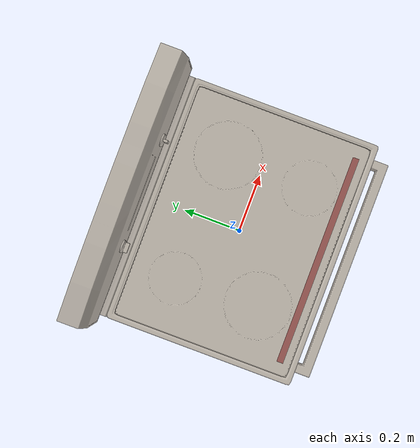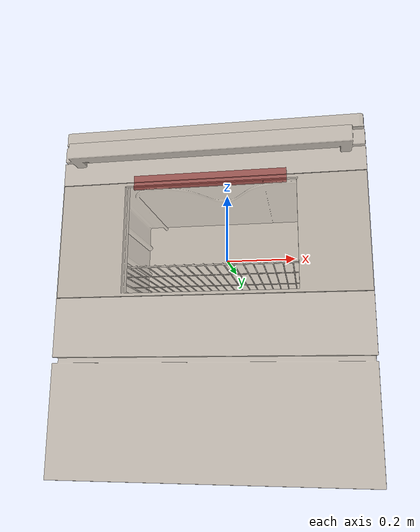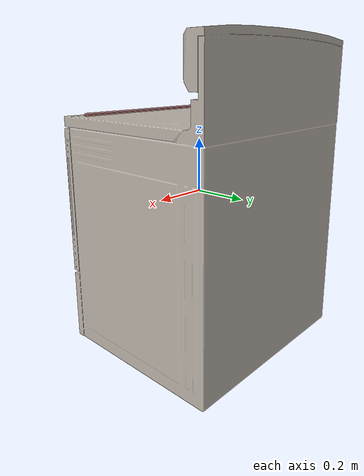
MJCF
<?xml version='1.0' encoding='UTF-8'?>
<mujoco model="model">
  <option timestep="0.002" gravity="0.0 0.0 -9.81"/>
  <compiler angle="radian"/>
  <asset>
    <mesh file="visuals/door.obj" name="door_vis"/>
    <mesh file="visuals/door_Clear.obj" name="door_Clear_vis"/>
    <mesh file="visuals/knob_temp.obj" name="knob_temp_vis"/>
    <mesh file="visuals/knob_time.obj" name="knob_time_vis"/>
    <mesh file="visuals/Body001.obj" name="Body001_vis"/>
    <mesh file="visuals/rack0.obj" name="rack0_vis"/>
    <texture file="visuals/T_BC001.png" name="Body001_material" type="2d"/>
    <material name="Body001_material" rgba="1 1 1 1.0" texture="Body001_material" shininess="0.5" specular="2"/>
    <texture file="visuals/T_BC001.png" name="door_material" type="2d"/>
    <material name="door_material" rgba="1 1 1 1.0" texture="door_material" shininess="0.5" specular="2"/>
    <texture file="visuals/T_BC001.png" name="door_Clear_material" type="2d"/>
    <material name="door_Clear_material" rgba="1 1 1 0.7272727489471436" texture="door_Clear_material" shininess="0.5" specular="0.3103448502657381"/>
    <texture file="visuals/T_BC001.png" name="knob_temp_material" type="2d"/>
    <material name="knob_temp_material" rgba="1 1 1 1.0" texture="knob_temp_material" shininess="0.5" specular="0.3103448502657381"/>
    <texture file="visuals/T_BC001.png" name="knob_time_material" type="2d"/>
    <material name="knob_time_material" rgba="1 1 1 1.0" texture="knob_time_material" shininess="0.5" specular="0.3103448502657381"/>
    <texture file="visuals/T_BC001.png" name="rack0_material" type="2d"/>
    <material name="rack0_material" rgba="1 1 1 1.0" texture="rack0_material" shininess="0.5" specular="3"/>
  </asset>
  <default>
    <default class="visual">
      <geom conaffinity="0" contype="0" group="1" type="mesh"/>
    </default>
    <default class="collision">
      <geom group="0" rgba="0.5 0 0 0.5"/>
    </default>
    <default class="spawn">
      <geom group="0" rgba="1 1 1 0.5" contype="0" conaffinity="0"/>
      <site group="0" rgba="1 1 1 0.5"/>
    </default>
    <default class="region">
      <geom group="1" conaffinity="0" contype="0" rgba="0 1 0 0"/>
    </default>
  </default>
  <worldbody>
    <body>
      <body name="object">
        <geom mesh="Body001_vis" type="mesh" solimp="0.998 0.998 0.001" solref="0.001 1" friction="0.95 0.3 0.1" class="visual" material="Body001_material"/>
        <geom class="collision" type="box" pos="-0.00227167 0.24000343 -0.04139528" size="0.3014715015888214 0.0676516517996788 0.2598732113838196" quat="1.0 0.0 0.0 0.0"/>
        <geom class="collision" type="box" pos="-0.00184912 -0.03098189 0.20845290" size="0.30033794045448303 0.19902478158473969 0.07686083763837814" quat="1.0 0.0 0.0 0.0"/>
        <geom class="collision" type="box" pos="0.27264078 -0.03077203 -0.04192845" size="0.026559069752693176 0.20048335194587708 0.2593398690223694" quat="1.0 0.0 0.0 0.0"/>
        <geom class="collision" type="box" pos="-0.27712686 -0.03077212 -0.04192852" size="0.026616383343935013 0.20048335194587708 0.25933995842933655" quat="1.0 0.0 0.0 0.0"/>
        <geom class="collision" type="box" pos="-0.00227165 -0.02890951 -0.27320776" size="0.2511892020702362 0.2017003446817398 0.028061946853995323" quat="1.0 0.0 0.0 0.0"/>
        <geom class="collision" type="box" pos="-0.00073569 -0.24815052 0.24226554" size="0.32137104868888855 0.009143575094640255 0.0558682344853878" quat="1.0 0.0 0.0 0.0"/>
        <geom class="collision" type="box" pos="-0.24293162 -0.02540437 -0.06207385" size="0.014099602587521076 0.18951387703418732 0.0020896990317851305" quat="1.0 0.0 0.0 0.0"/>
        <geom class="collision" type="box" pos="0.24038084 -0.02540436 -0.06207385" size="0.014099602587521076 0.1895138919353485 0.0020896983332931995" quat="1.0 0.0 0.0 0.0"/>
        <geom class="collision" type="box" pos="-0.31071340 -0.24731411 -0.05929770" size="0.012374995276331902 0.008304930292069912 0.22765378654003143" quat="1.0 0.0 0.0 0.0"/>
        <geom class="collision" type="box" pos="0.30945463 -0.24731411 -0.05929770" size="0.01118070911616087 0.008304926566779613 0.2276536375284195" quat="1.0 0.0 0.0 0.0"/>
        <body name="door">
          <joint axis="1.0 0.0 0.0" pos="-0.00057546 -0.25878185469690396 -0.28959869737586974" limited="true" name="door_joint" range="0.0 1.15" type="hinge" damping="1" frictionloss="1" armature="1" stiffness="2"/>
          <geom mesh="door_vis" type="mesh" solimp="0.998 0.998 0.001" solref="0.001 1" friction="0.95 0.3 0.1" class="visual" material="door_material"/>
          <geom class="collision" type="box" pos="-0.00209600 -0.24580060 -0.05929768" size="0.29425370693206787 0.012981293722987175 0.22765524685382843" quat="1.0 0.0 0.0 0.0"/>
          <geom class="collision" type="box" pos="-0.15080968 -0.27807199 0.13510865" size="0.027385232970118523 0.021427232772111893 0.006111652124673128" quat="1.0 0.0 0.0 0.0"/>
          <geom class="collision" type="box" pos="0.15086640 -0.27807199 0.13510865" size="0.027385232970118523 0.021427210420370102 0.006111650262027979" quat="1.0 0.0 0.0 0.0"/>
          <geom class="collision" type="box" pos="0.00001850 -0.30249553 0.13878617" size="0.1898331493139267 0.005006265826523304 0.017416799440979958" quat="1.0 0.0 0.0 0.0" name="door_handle_main"/>
          <geom class="collision" type="box" pos="-0.00057546 -0.25826286 -0.05775460" size="0.3212108016014099 0.0005189946969039738 0.23184409737586975" quat="1.0 0.0 0.0 0.0" name="door_main"/>
          <body name="door_Clear">
            <geom mesh="door_Clear_vis" type="mesh" solimp="0.998 0.998 0.001" solref="0.001 1" friction="0.95 0.3 0.1" class="visual" material="door_Clear_material"/>
          </body>
        </body>
        <body name="knob_temp">
          <joint axis="0.0 1.0 0.0" pos="0.23827599 -0.26916923 0.24348911" limited="true" name="knob_temp_joint" range="0.0 5.585053606381854" type="hinge" damping="0.05" frictionloss="0.75" armature="1"/>
          <geom mesh="knob_temp_vis" type="mesh" solimp="0.998 0.998 0.001" solref="0.001 1" friction="0.95 0.3 0.1" class="visual" material="knob_temp_material"/>
          <geom class="collision" type="cylinder" pos="0.23839319 -0.26311951 0.24397648" size="0.022314438596367836 0.0030426383018493652" quat="0.7071067094802856 0.7071068286895752 0.0 0.0" friction="100 0.5 0.01"/>
          <geom class="collision" type="box" pos="0.23838706 -0.27293344 0.24389005" size="0.005545775406062603 0.007464578840881586 0.021192442625761032" quat="1.0 0.0 0.0 0.0" name="knob_temp_main" friction="100 0.5 0.01"/>
        </body>
        <body name="knob_time">
          <joint axis="0.0 1.0 0.0" pos="-0.24202271 -0.26916923 0.24380561" limited="true" name="knob_time_joint" range="0.0 5.235987755982989" type="hinge" damping="0.05" frictionloss="0.75" armature="1"/>
          <geom mesh="knob_time_vis" type="mesh" solimp="0.998 0.998 0.001" solref="0.001 1" friction="0.95 0.3 0.1" class="visual" material="knob_time_material"/>
          <geom class="collision" type="cylinder" pos="-0.24195312 -0.26311951 0.24397648" size="0.022314438596367836 0.0030426383018493652" quat="0.7071067094802856 0.7071068286895752 0.0 0.0" friction="100 0.5 0.01"/>
          <geom class="collision" type="box" pos="-0.24203253 -0.27293344 0.24389005" size="0.021192438900470734 0.007464615628123283 0.005427068565040827" quat="1.0 0.0 0.0 0.0" name="knob_time_main" friction="100 0.5 0.01"/>
        </body>
        <body name="rack0">
          <geom class="region" name="reg_rack0" type="box" pos="-0.0012005499999999947 -0.030436539999999998 0.029563575" size="0.18876736 0.15052669000000002 0.10302871499999999"/>
          <joint axis="0.0 -1.0 0.0" pos="-0.00122647 -0.02414589 -0.06738781" limited="true" name="rack0_joint" range="0.0 0.30" type="slide" damping="1" frictionloss="1" armature=".01" stiffness="0.05"/>
          <geom mesh="rack0_vis" type="mesh" solimp="0.998 0.998 0.001" solref="0.001 1" friction="0.95 0.3 0.1" class="visual" material="rack0_material"/>
          <geom class="collision" type="cylinder" pos="-0.19142097 -0.20481177 -0.06540239" size="0.002285315888002515 0.0077491216361522675" quat="0.7071067094802856 0.7071068286895752 0.0 0.0"/>
          <geom class="collision" type="cylinder" pos="0.18901841 -0.20481177 -0.06540239" size="0.002285315888002515 0.0077491216361522675" quat="0.7071067094802856 0.7071068286895752 0.0 0.0"/>
          <geom class="collision" type="cylinder" pos="-0.19142097 0.15657298 -0.06540239" size="0.002285315888002515 0.0077491216361522675" quat="0.7071067094802856 0.7071068286895752 0.0 0.0"/>
          <geom class="collision" type="cylinder" pos="0.18901841 0.15657298 -0.06540239" size="0.002285315888002515 0.0077491216361522675" quat="0.7071067094802856 0.7071068286895752 0.0 0.0"/>
          <geom class="collision" type="cylinder" pos="-0.00024603 0.16199925 -0.06934429" size="0.0022853196132928133 0.19655202329158783" quat="0.7071068286895752 -0.0 0.7071067690849304 0.0"/>
          <geom class="collision" type="cylinder" pos="-0.00024603 -0.21032267 -0.06934429" size="0.0022853196132928133 0.19655202329158783" quat="0.7071068286895752 -0.0 0.7071067690849304 0.0"/>
          <geom class="collision" type="box" pos="-0.00138413 -0.02394252 -0.07523237" size="0.1927201747894287 0.16120435297489166 0.0027674497105181217" quat="1.0 0.0 0.0 0.0"/>
          <geom class="collision" type="box" pos="-0.22277010 -0.02540436 -0.05762314" size="0.014099625870585442 0.18951386213302612 0.0019992294255644083" quat="1.0 0.0 0.0 0.0"/>
          <geom class="collision" type="box" pos="0.21971577 -0.02540436 -0.05762314" size="0.014099602587521076 0.18951386213302612 0.001999223604798317" quat="1.0 0.0 0.0 0.0"/>
          <geom class="collision" type="box" pos="-0.20308875 -0.02540435 -0.06469428" size="0.18951386213302612 0.001999218249693513 0.014099583961069584" quat="0.6227294206619263 -0.3349742293357849 -0.3349745273590088 0.6227297782897949"/>
          <geom class="collision" type="box" pos="0.20060134 -0.02540435 -0.06525998" size="0.18951386213302612 0.001999218249693513 0.014099583961069584" quat="0.31096601486206055 -0.6350590586662292 -0.6350591778755188 0.31096622347831726"/>
        </body>
        <geom class="region" name="reg_int" type="box" pos="-0.0012264849999999994 -0.023056889999999997 -0.056949910000000006" size="0.235473375 0.19272052 0.17848539000000002"/>
        <geom class="region" name="reg_main" type="box" pos="-0.0012264999999999915 0.024436454999999996 9.000000000813912e-08" size="0.3228618 0.284218325 0.30226965"/>
      </body>
    </body>
  </worldbody>
  <actuator>
    <motor name="door_joint_actuator" joint="door_joint" gear="50"/>
    <motor name="knob_temp_joint_actuator" joint="knob_temp_joint" gear="10"/>
    <motor name="knob_time_joint_actuator" joint="knob_time_joint" gear="10"/>
    <motor name="rack0_joint_actuator" joint="rack0_joint" gear="20"/>
  </actuator>
</mujoco>
